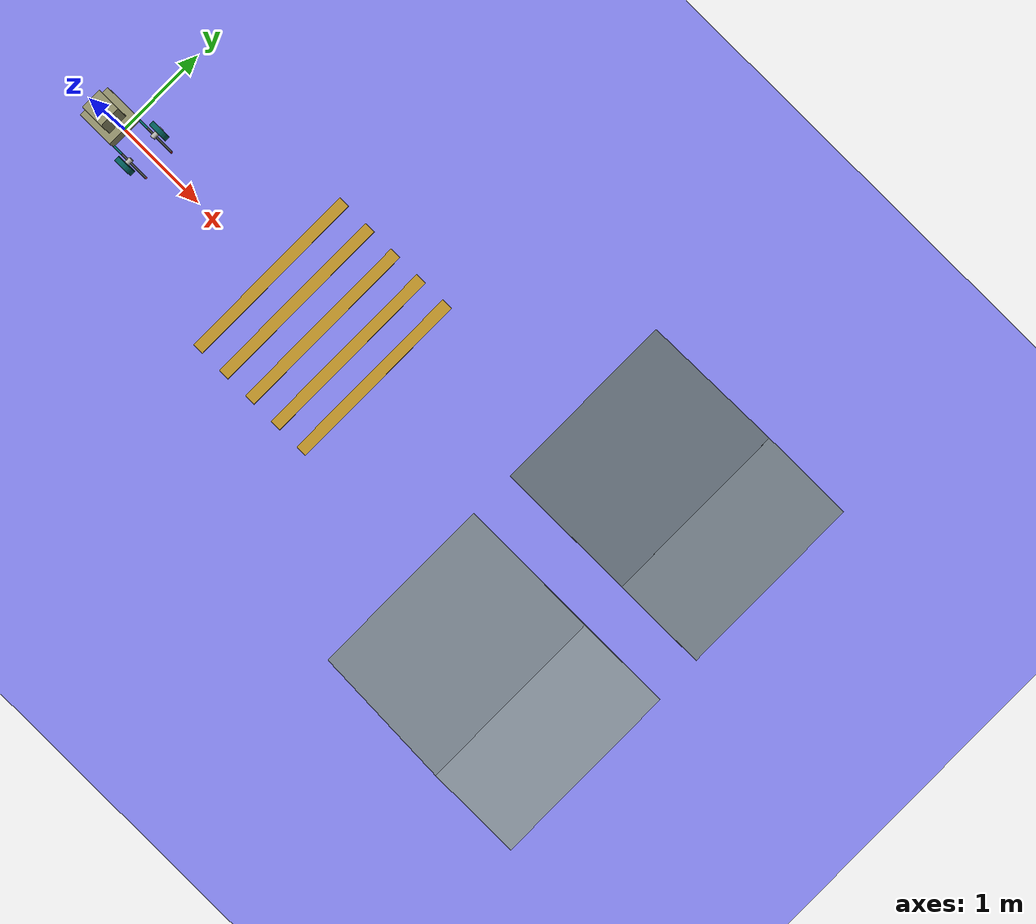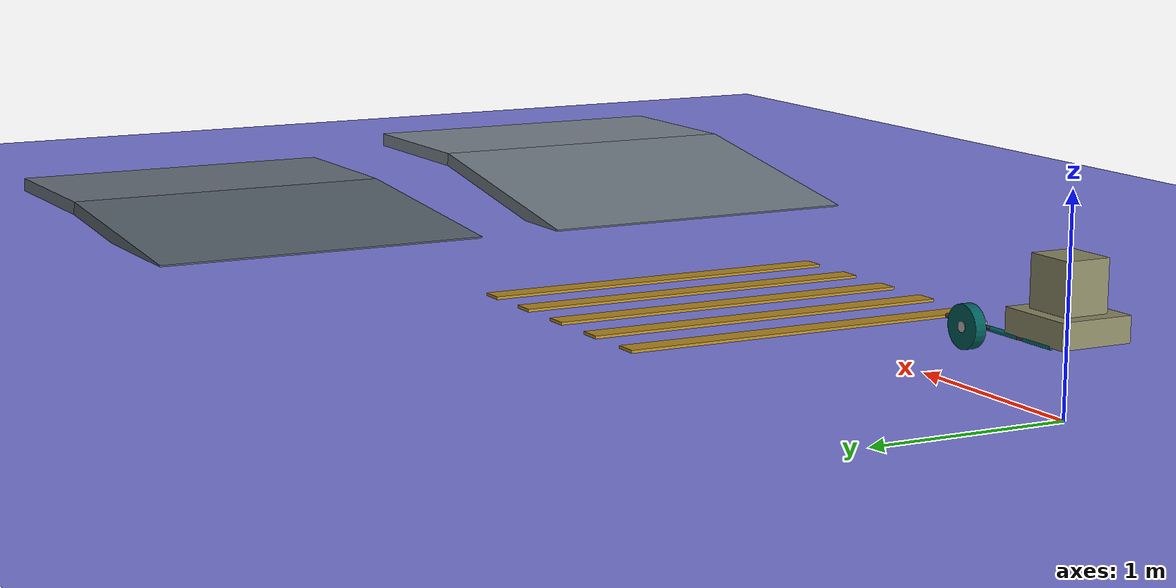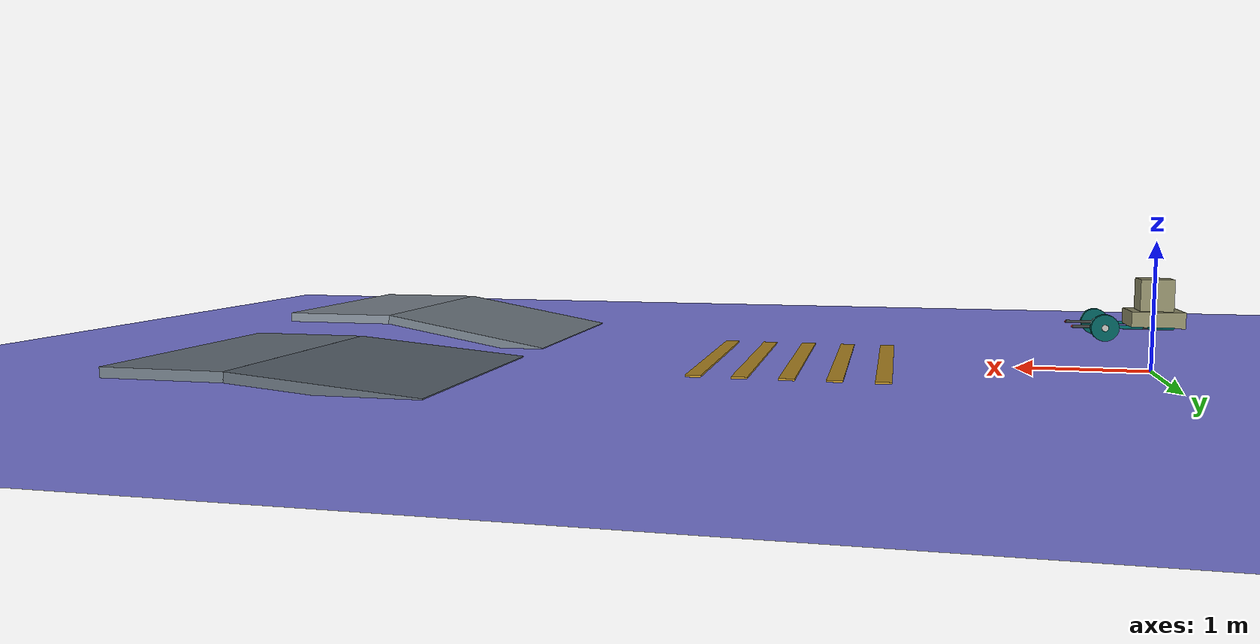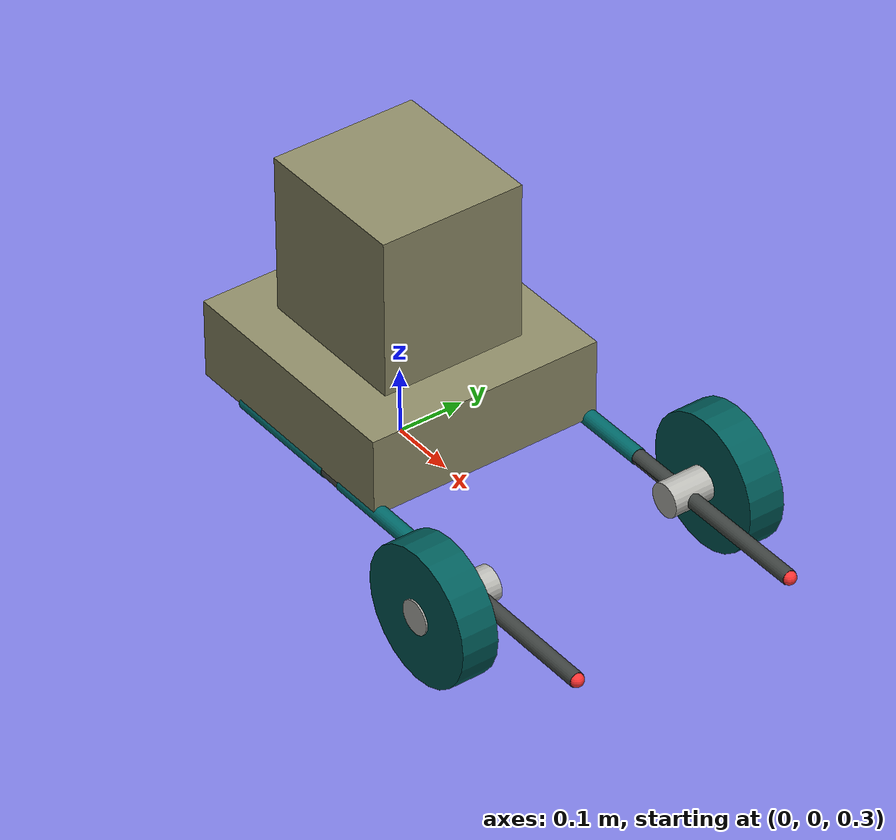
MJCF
<mujoco model="dog scene">
    <option gravity="0 0 -9.81" />
    <include file="car.xml" />

    <statistic center="0 0 1.3" extent="0.8" />

    <visual>
        <headlight diffuse="0.1 0.1 0.1" ambient="0.3 0.3 0.3" specular="0 0 0" />
        <rgba haze="0.0 0.0 0.0 0" />
        <global offwidth="1920" offheight="1080" />
    </visual>

    <default>
        <geom group="2" rgba="0.5 0.5 0.9 0.4" />
    </default>

    <asset>
        <texture type="skybox" builtin="gradient" rgb1="0.3 0.5 0.7" rgb2="0 0 0" width="512"
            height="3072" />
        <texture type="2d" name="groundplane" builtin="checker" mark="edge" rgb1="0.2 0.3 0.4"
            rgb2="0.1 0.2 0.3"
            markrgb="0.8 0.8 0.8" width="300" height="300" />
        <material name="groundplane" texture="groundplane" texuniform="true" texrepeat="5 5"
            reflectance="0.2" />
    </asset>

    <worldbody>
        <body name="terrain_adaptation_course">
            <geom name="ground" type="plane" size="50 50 0.3" pos="0 0 0" material="groundplane"
                contype="1" conaffinity="1" />

            <light name="light" pos="0 0 5" dir="0 0 -1" directional="true" />

            <geom name="speed_bump_1" type="box" size="0.06 1 0.0075" pos="2.0 0 0.0075" rgba="0.72 0.55 0.14 1" />
            <geom name="speed_bump_2" type="box" size="0.06 1 0.0075" pos="2.35 0 0.0075" rgba="0.72 0.55 0.14 1" />
            <geom name="speed_bump_3" type="box" size="0.06 1 0.0075" pos="2.7 0 0.0075" rgba="0.72 0.55 0.14 1" />
            <geom name="speed_bump_4" type="box" size="0.06 1 0.0075" pos="3.05 0 0.0075" rgba="0.72 0.55 0.14 1" />
            <geom name="speed_bump_5" type="box" size="0.06 1 0.0075" pos="3.4 0 0.0075" rgba="0.72 0.55 0.14 1" />

            <!-- 10 deg ramp: 1.5 m slope length, 2 m width, 1 m top platform. -->
            <body name="ramp_10deg" pos="5 -1.25 0" quat="0.996195 0 -0.087156 0">
                <geom name="ramp_10deg_slope" type="box" size="0.75 1 0.04" pos="0.75 0 -0.04" rgba="0.44 0.48 0.52 1" />
            </body>
            <geom name="ramp_10deg_platform" type="box" size="0.5 1 0.04" pos="6.977 -1.25 0.220" rgba="0.50 0.54 0.58 1" />

            <!-- 5 deg ramp: 1.5 m slope length, 2 m width, 1 m top platform. -->
            <body name="ramp_5deg" pos="5 1.25 0" quat="0.999048 0 -0.043619 0">
                <geom name="ramp_5deg_slope" type="box" size="0.75 1 0.04" pos="0.75 0 -0.04" rgba="0.36 0.40 0.44 1" />
            </body>
            <geom name="ramp_5deg_platform" type="box" size="0.5 1 0.04" pos="6.994 1.25 0.091" rgba="0.42 0.46 0.50 1" />
        </body>
    </worldbody>

</mujoco>

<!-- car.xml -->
<mujoco model="five_bar_wheel_leg_balance_car">
  <compiler angle="radian"/>
  <option timestep="0.001" integrator="RK4"/>

  <worldbody>
    <body name="base_link">
      <inertial pos="0 0 0.4865" quat="0.707107 0 0 0.707107" mass="2.3" diaginertia="0.0447 0.0423 0.0406"/>
      <joint name="floating_base" type="free"/>
      <geom size="0.19 0.18 0.06" pos="0 0 0.42" type="box" rgba="0.56 0.55 0.41 1"/>
      <geom size="0.12 0.11 0.12" pos="0 0 0.6" type="box" rgba="0.56 0.55 0.41 1"/>
      <site name="imu" pos="0 0 0.50" size="0.012" rgba="0.1 0.2 0.9 1"/>
      <body name="left_front_upper_link" pos="0.11 0.17 0.36">
        <inertial pos="0.0922 0 0" quat="0.5 0.5 0.5 0.5" mass="0.09" diaginertia="0.00029 0.00022 0.00012"/>
        <joint name="left_front_hip_joint" pos="0 0 0" axis="0 1 0" range="0.1 1.8" actuatorfrcrange="-18 18" damping="0.04" frictionloss="0.01"/>
        <geom size="0.012 0.0922" pos="0.0922 0 0" quat="0.707247 0 0.706967 0" type="cylinder" rgba="0 0.42 0.42 1"/>
        <body name="left_front_lower_link" pos="0.1844 0 0">
          <inertial pos="0.1565 0 0" quat="0.5 0.5 0.5 0.5" mass="0.12" diaginertia="0.00108 0.00094 0.00018"/>
          <joint name="left_front_knee_joint" pos="0 0 0" axis="0 1 0" range="0 3.14159" actuatorfrcrange="-3 3" damping="0.02" frictionloss="0.004"/>
          <geom size="0.011 0.1565" pos="0.1565 0 0" quat="0.707388 0 -0.706825 0" type="cylinder" rgba="0.25 0.27 0.26 1"/>
          <site name="left_front_closure_site" pos="0.313 0 0" size="0.01" rgba="1 0.2 0.2 1"/>
        </body>
      </body>
      <body name="left_rear_upper_link" pos="-0.11 0.17 0.36">
        <inertial pos="0.0922 0 0" quat="0.5 0.5 0.5 0.5" mass="0.09" diaginertia="0.00029 0.00022 0.00012"/>
        <joint name="left_rear_hip_joint" pos="0 0 0" axis="0 1 0" range="1.34159 3.04159" actuatorfrcrange="-18 18" damping="0.04" frictionloss="0.01"/>
        <geom size="0.012 0.0922" pos="0.0922 0 0" quat="0.707247 0 0.706967 0" type="cylinder" rgba="0 0.42 0.42 1"/>
        <body name="left_rear_lower_link" pos="0.1844 0 0">
          <inertial pos="0.1565 0 0" quat="0.5 0.5 0.5 0.5" mass="0.12" diaginertia="0.00108 0.00094 0.00018"/>
          <joint name="left_rear_knee_joint" pos="0 0 0" axis="0 1 0" range="-3.14159 0" actuatorfrcrange="-3 3" damping="0.02" frictionloss="0.004"/>
          <geom size="0.011 0.1565" pos="0.1565 0 0" quat="0.707388 0 -0.706825 0" type="cylinder" rgba="0.25 0.27 0.26 1"/>
          <body name="left_wheel_carrier" pos="0.313 0 0">
            <inertial pos="0 0.03 0" quat="0.707107 0.707107 0 0" mass="0.09" diaginertia="8e-05 8e-05 4e-05"/>
            <joint name="left_rear_ankle_joint" pos="0 0 0" axis="0 1 0" range="-2.8 2.8" actuatorfrcrange="-3 3" damping="0.02" frictionloss="0.004"/>
            <site name="left_wheel_carrier_closure_site" pos="0 0 0" size="0.01" rgba="1 0.2 0.2 1"/>
            <geom size="0.025 0.06" pos="0 0.03 0" quat="0.707105 0.707108 0 0" type="cylinder" rgba="0.72 0.72 0.7 1"/>
            <body name="left_wheel" pos="0 0.06 0">
              <inertial pos="0 0 0" quat="0.5 0.5 -0.5 0.5" mass="0.32" diaginertia="0.0016 0.00102 0.00102"/>
              <joint name="left_wheel_joint" pos="0 0 0" axis="0 1 0" actuatorfrcrange="-16 16" damping="0.01" frictionloss="0.004"/>
              <geom name="left_wheel_tire" size="0.1 0.0275" quat="0.707105 0.707108 0 0" type="cylinder" rgba="0 0.36 0.35 1" friction="1.4 0.04 0.002"/>
            </body>
          </body>
        </body>
      </body>
      <body name="right_front_upper_link" pos="0.11 -0.17 0.36">
        <inertial pos="0.0922 0 0" quat="0.5 0.5 0.5 0.5" mass="0.09" diaginertia="0.00029 0.00022 0.00012"/>
        <joint name="right_front_hip_joint" pos="0 0 0" axis="0 1 0" range="0.1 1.8" actuatorfrcrange="-18 18" damping="0.04" frictionloss="0.01"/>
        <geom size="0.012 0.0922" pos="0.0922 0 0" quat="0.707247 0 0.706967 0" type="cylinder" rgba="0 0.42 0.42 1"/>
        <body name="right_front_lower_link" pos="0.1844 0 0">
          <inertial pos="0.1565 0 0" quat="0.5 0.5 0.5 0.5" mass="0.12" diaginertia="0.00108 0.00094 0.00018"/>
          <joint name="right_front_knee_joint" pos="0 0 0" axis="0 1 0" range="0 3.14159" actuatorfrcrange="-3 3" damping="0.02" frictionloss="0.004"/>
          <geom size="0.011 0.1565" pos="0.1565 0 0" quat="0.707388 0 -0.706825 0" type="cylinder" rgba="0.25 0.27 0.26 1"/>
          <site name="right_front_closure_site" pos="0.313 0 0" size="0.01" rgba="1 0.2 0.2 1"/>
        </body>
      </body>
      <body name="right_rear_upper_link" pos="-0.11 -0.17 0.36">
        <inertial pos="0.0922 0 0" quat="0.5 0.5 0.5 0.5" mass="0.09" diaginertia="0.00029 0.00022 0.00012"/>
        <joint name="right_rear_hip_joint" pos="0 0 0" axis="0 1 0" range="1.34159 3.04159" actuatorfrcrange="-18 18" damping="0.04" frictionloss="0.01"/>
        <geom size="0.012 0.0922" pos="0.0922 0 0" quat="0.707247 0 0.706967 0" type="cylinder" rgba="0 0.42 0.42 1"/>
        <body name="right_rear_lower_link" pos="0.1844 0 0">
          <inertial pos="0.1565 0 0" quat="0.5 0.5 0.5 0.5" mass="0.12" diaginertia="0.00108 0.00094 0.00018"/>
          <joint name="right_rear_knee_joint" pos="0 0 0" axis="0 1 0" range="-3.14159 0" actuatorfrcrange="-3 3" damping="0.02" frictionloss="0.004"/>
          <geom size="0.011 0.1565" pos="0.1565 0 0" quat="0.707388 0 -0.706825 0" type="cylinder" rgba="0.25 0.27 0.26 1"/>
          <body name="right_wheel_carrier" pos="0.313 0 0">
            <inertial pos="0 -0.03 0" quat="0.707107 0.707107 0 0" mass="0.09" diaginertia="8e-05 8e-05 4e-05"/>
            <joint name="right_rear_ankle_joint" pos="0 0 0" axis="0 1 0" range="-2.8 2.8" actuatorfrcrange="-3 3" damping="0.02" frictionloss="0.004"/>
            <site name="right_wheel_carrier_closure_site" pos="0 0 0" size="0.01" rgba="1 0.2 0.2 1"/>
            <geom size="0.025 0.06" pos="0 -0.03 0" quat="0.707105 0.707108 0 0" type="cylinder" rgba="0.72 0.72 0.7 1"/>
            <body name="right_wheel" pos="0 -0.06 0">
              <inertial pos="0 0 0" quat="0.5 0.5 -0.5 0.5" mass="0.32" diaginertia="0.0016 0.00102 0.00102"/>
              <joint name="right_wheel_joint" pos="0 0 0" axis="0 1 0" actuatorfrcrange="-16 16" damping="0.01" frictionloss="0.004"/>
              <geom name="right_wheel_tire" size="0.1 0.0275" quat="0.707105 0.707108 0 0" type="cylinder" rgba="0 0.36 0.35 1" friction="1.4 0.04 0.002"/>
            </body>
          </body>
        </body>
      </body>
    </body>
  </worldbody>

  <equality>
    <connect name="left_front_fivebar_closure" site1="left_front_closure_site" site2="left_wheel_carrier_closure_site" solref="0.006 1" solimp="0.95 0.99 0.001"/>
    <connect name="right_front_fivebar_closure" site1="right_front_closure_site" site2="right_wheel_carrier_closure_site" solref="0.006 1" solimp="0.95 0.99 0.001"/>
  </equality>

  <contact>
    <exclude body1="left_front_lower_link" body2="left_wheel_carrier"/>
    <exclude body1="left_front_lower_link" body2="left_rear_lower_link"/>
    <exclude body1="right_front_lower_link" body2="right_wheel_carrier"/>
    <exclude body1="right_front_lower_link" body2="right_rear_lower_link"/>
  </contact>

  <actuator>
    <!-- Left side -->
    <motor name="l1_motor" joint="left_front_hip_joint" gear="1" ctrllimited="true" ctrlrange="-20 20"/>
    <motor name="l2_motor" joint="left_rear_hip_joint" gear="1" ctrllimited="true" ctrlrange="-20 20"/>
    <motor name="lw_motor" joint="left_wheel_joint" gear="1" ctrllimited="true" ctrlrange="-20 20"/>

    <!-- Right side -->
    <motor name="r1_motor" joint="right_front_hip_joint" gear="1" ctrllimited="true" ctrlrange="-20 20"/>
    <motor name="r2_motor" joint="right_rear_hip_joint" gear="1" ctrllimited="true" ctrlrange="-20 20"/>
    <motor name="rw_motor" joint="right_wheel_joint" gear="1" ctrllimited="true" ctrlrange="-20 20"/>
  </actuator>

  <sensor>
    <!-- actuator position -->
    <actuatorpos name="l1_motor_p" actuator="l1_motor"/>
    <actuatorpos name="l2_motor_p" actuator="l2_motor"/>
    <actuatorpos name="lw_motor_p" actuator="lw_motor"/>
    <actuatorpos name="r1_motor_p" actuator="r1_motor"/>
    <actuatorpos name="r2_motor_p" actuator="r2_motor"/>
    <actuatorpos name="rw_motor_p" actuator="rw_motor"/>

    <!-- actuator velocity -->
    <actuatorvel name="l1_motor_v" actuator="l1_motor"/>
    <actuatorvel name="l2_motor_v" actuator="l2_motor"/>
    <actuatorvel name="lw_motor_v" actuator="lw_motor"/>
    <actuatorvel name="r1_motor_v" actuator="r1_motor"/>
    <actuatorvel name="r2_motor_v" actuator="r2_motor"/>
    <actuatorvel name="rw_motor_v" actuator="rw_motor"/>

    <!-- actuator force -->
    <actuatorfrc name="l1_motor_f" actuator="l1_motor" noise="1e-3"/>
    <actuatorfrc name="l2_motor_f" actuator="l2_motor" noise="1e-3"/>
    <actuatorfrc name="lw_motor_f" actuator="lw_motor" noise="1e-3"/>
    <actuatorfrc name="r1_motor_f" actuator="r1_motor" noise="1e-3"/>
    <actuatorfrc name="r2_motor_f" actuator="r2_motor" noise="1e-3"/>
    <actuatorfrc name="rw_motor_f" actuator="rw_motor" noise="1e-3"/>

    <!-- IMU (imu_main): pose/orientation + acceleration + angular velocity -->
    <accelerometer name="imu_main_acc" site="imu" cutoff="157"/>
    <gyro name="imu_main_gyro" site="imu" cutoff="34.9"/>
    <framequat name="imu_main_quat" objtype="site" objname="imu"/>
  </sensor>
    <!-- qpos order: free joint (pos x y z + quat w x y z) followed by joint qpos in appearance order -->
</mujoco>
